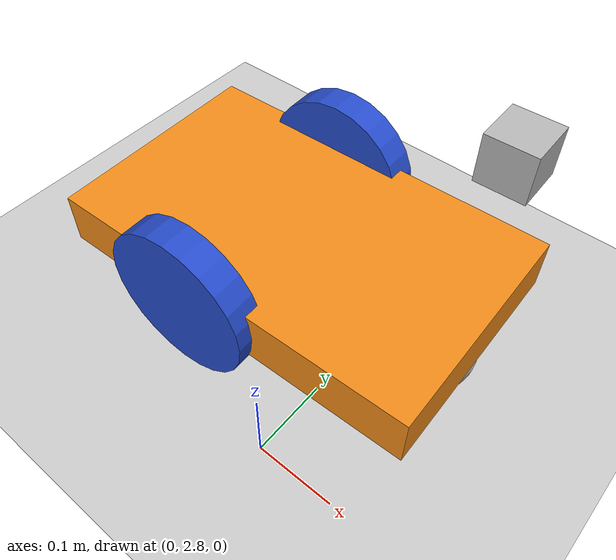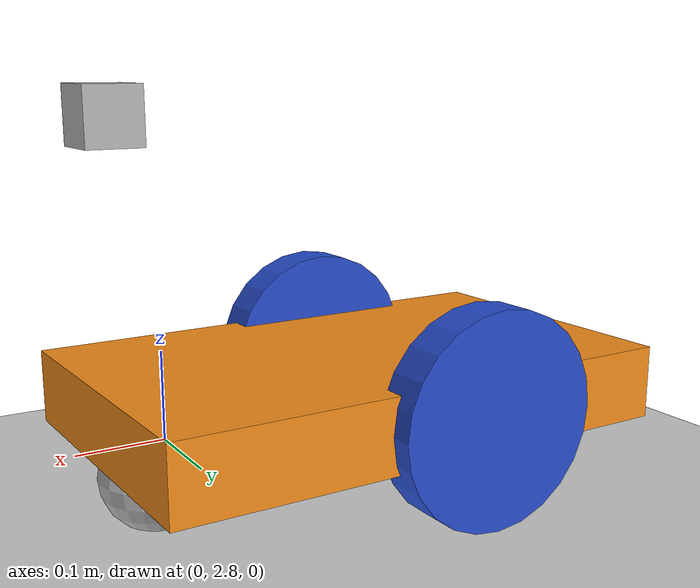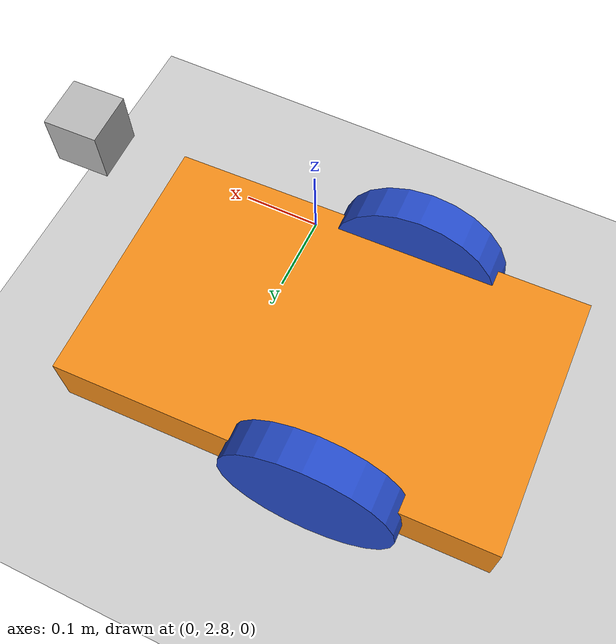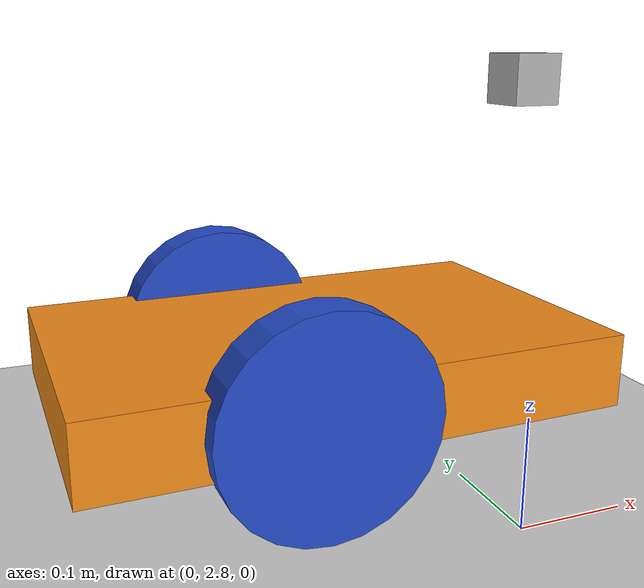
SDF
<sdf version="1.7">
 <world name="default">
  <model name="ground_plane">
   <static>1</static>
   <link name="link">
    <collision name="collision">
     <geometry><plane><normal>0 0 1</normal><size>100 100</size></plane></geometry>
     <surface><friction><ode><mu>100</mu><mu2>50</mu2></ode></friction></surface>
    </collision>
    <visual name="visual">
     <cast_shadows>0</cast_shadows>
     <geometry><plane><normal>0 0 1</normal><size>100 100</size></plane></geometry>
     <material>
      <script><uri>file://media/materials/scripts/gazebo.material</uri><name>Gazebo/Grey</name></script>
     </material>
    </visual>
   </link>
  </model>
  <model name="my_test_robot">
   <link name="link_chassis">
    <inertial>
     <pose>0 0 0.1 0 -0 0</pose>
     <mass>5.00001</mass>
     <inertia>
      <ixx>0.0395428</ixx>
      <ixy>0</ixy>
      <ixz>-3.10499e-07</ixz>
      <iyy>0.10621</iyy>
      <iyz>0</iyz>
      <izz>0.10621</izz>
     </inertia>
    </inertial>
    <collision name="link_chassis_fixed_joint_lump__collision_chassis_collision">
     <geometry><box><size>0.5 0.3 0.07</size></box></geometry>
    </collision>
    <collision name="link_chassis_fixed_joint_lump__caster_front_collision_collision_1">
     <pose>0.35 0 -0.05 0 -0 0</pose>
     <geometry><sphere><radius>0.05</radius></sphere></geometry>
    </collision>
    <collision name="link_chassis_fixed_joint_lump__camera_link_collision_2">
     <pose>0.23 0 0.335 0 -0 0</pose>
     <geometry><box><size>0.05 0.05 0.2</size></box></geometry>
    </collision>
    <visual name="link_chassis_visual">
     <geometry><box><size>0.5 0.3 0.07</size></box></geometry>
     <material>
      <script><name>Gazebo/Orange</name><uri>file://media/materials/scripts/gazebo.material</uri></script>
     </material>
    </visual>
    <visual name="link_chassis_fixed_joint_lump__caster_front_visual_visual_1">
     <pose>0.2 0 -0.05 0 -0 0</pose>
     <geometry><sphere><radius>0.05</radius></sphere></geometry>
    </visual>
    <visual name="link_chassis_fixed_joint_lump__camera_link_visual_2">
     <pose>0.23 0 0.26 0 -0 0</pose>
     <geometry><box><size>0.05 0.05 0.05</size></box></geometry>
    </visual>
    <sensor name="sensor_ray" type="ray">
     <ray>
      <scan>
       <horizontal>
        <samples>360</samples>
        <resolution>1</resolution>
        <min_angle>-3.14</min_angle>
        <max_angle>3.14</max_angle>
       </horizontal>
       <vertical><samples>1</samples><min_angle>0</min_angle><max_angle>0</max_angle></vertical>
      </scan>
      <range><min>0.1</min><max>25</max></range>
     </ray>
     <always_on>1</always_on>
     <visualize>1</visualize>
     <update_rate>100</update_rate>
     <plugin name="laser" filename="libgazebo_ros_ray_sensor.so">
      <ros><remapping>~/out:=scan</remapping></ros>
      <output_type>sensor_msgs/LaserScan</output_type>
      <frame_name>camera_link</frame_name>
     </plugin>
     <pose>0.23 0 0.235 0 -0 0</pose>
    </sensor>
    <sensor name="camera" type="camera">
     <always_on>1</always_on>
     <update_rate>15</update_rate>
     <camera name="camera">
      <horizontal_fov>1.46608</horizontal_fov>
      <image><width>640</width><height>480</height><format>R8G8B8</format></image>
      <distortion><k1>0</k1><k2>0</k2><k3>0</k3><p1>0</p1><p2>0</p2><center>0.5 0.5</center></distortion>
      <clip><near>0.1</near><far>100</far></clip>
     </camera>
     <plugin name="plugin_name" filename="libgazebo_ros_camera.so">
      <ros><remapping>~/image_raw:=image_raw</remapping><remapping>~/camera_info:=camera_info</remapping></ros>
      <camera_name>camera</camera_name>
      <frame_name>camera_link</frame_name>
     </plugin>
     <pose>0.23 0 0.235 0 -0 0</pose>
    </sensor>
   </link>
   <joint name="joint_left_wheel" type="revolute">
    <pose relative_to="link_chassis">-0.05 -0.15 0 0 -0 0</pose>
    <parent>link_chassis</parent>
    <child>link_left_wheel</child>
    <axis>
     <xyz>0 1 0</xyz>
     <limit><effort>10000</effort><velocity>1000</velocity><lower>-1e+16</lower><upper>1e+16</upper></limit>
     <dynamics><spring_reference>0</spring_reference><spring_stiffness>0</spring_stiffness></dynamics>
    </axis>
   </joint>
   <link name="link_left_wheel">
    <pose relative_to="joint_left_wheel">0 0 0 0 -0 0</pose>
    <inertial>
     <pose>0 0 0 -0 1.5707 1.5707</pose>
     <mass>0.2</mass>
     <inertia>
      <ixx>0.000526667</ixx>
      <ixy>0</ixy>
      <ixz>0</ixz>
      <iyy>0.000526667</iyy>
      <iyz>0</iyz>
      <izz>0.001</izz>
     </inertia>
    </inertial>
    <collision name="link_left_wheel_collision_collision">
     <pose>0 0 0 1.57089 1.57079 -3.14159</pose>
     <geometry><cylinder><length>0.04</length><radius>0.1</radius></cylinder></geometry>
    </collision>
    <visual name="link_left_wheel_visual_visual">
     <pose>0 0 0 1.57089 1.57079 -3.14159</pose>
     <geometry><cylinder><length>0.04</length><radius>0.1</radius></cylinder></geometry>
     <material>
      <script><name>Gazebo/Blue</name><uri>file://media/materials/scripts/gazebo.material</uri></script>
     </material>
    </visual>
   </link>
   <joint name="joint_right_wheel" type="revolute">
    <pose relative_to="link_chassis">-0.05 0.15 0 0 -0 0</pose>
    <parent>link_chassis</parent>
    <child>link_right_wheel</child>
    <axis>
     <xyz>0 1 0</xyz>
     <limit><effort>10000</effort><velocity>1000</velocity><lower>-1e+16</lower><upper>1e+16</upper></limit>
     <dynamics><spring_reference>0</spring_reference><spring_stiffness>0</spring_stiffness></dynamics>
    </axis>
   </joint>
   <link name="link_right_wheel">
    <pose relative_to="joint_right_wheel">0 0 0 0 -0 0</pose>
    <inertial>
     <pose>0 0 0 -0 1.5707 1.5707</pose>
     <mass>0.2</mass>
     <inertia>
      <ixx>0.000526667</ixx>
      <ixy>0</ixy>
      <ixz>0</ixz>
      <iyy>0.000526667</iyy>
      <iyz>0</iyz>
      <izz>0.001</izz>
     </inertia>
    </inertial>
    <collision name="link_right_wheel_collision_collision">
     <pose>0 0 0 1.57089 1.57079 -3.14159</pose>
     <geometry><cylinder><length>0.04</length><radius>0.1</radius></cylinder></geometry>
    </collision>
    <visual name="link_right_wheel_visual_visual">
     <pose>0 0 0 1.57089 1.57079 -3.14159</pose>
     <geometry><cylinder><length>0.04</length><radius>0.1</radius></cylinder></geometry>
     <material>
      <script><name>Gazebo/Blue</name><uri>file://media/materials/scripts/gazebo.material</uri></script>
     </material>
    </visual>
   </link>
   <static>0</static>
   <plugin name="wheel_drive_controller" filename="libgazebo_ros_diff_drive.so">
    <num_wheel_pairs>1</num_wheel_pairs>
    <left_joint>joint_right_wheel</left_joint>
    <right_joint>joint_left_wheel</right_joint>
    <wheel_separation>0.2</wheel_separation>
    <wheel_diameter>0.2</wheel_diameter>
    <max_wheel_torque>20.0</max_wheel_torque>
    <max_wheel_acceleration>10.0</max_wheel_acceleration>
    <odometry_frame>odom</odometry_frame>
    <robot_base_frame>link_chassis</robot_base_frame>
    <ros><namespace>/</namespace><argument>/cmd_vel:=cmd_vel</argument><argument>/odom:=odom</argument></ros>
    <publish_odom>1</publish_odom>
    <publish_odom_tf>1</publish_odom_tf>
    <update_rate>100.0</update_rate>
   </plugin>
   <pose>-0.111497 3.00315 0.1 -9e-06 8e-06 0.027149</pose>
  </model>
 </world>
</sdf>
